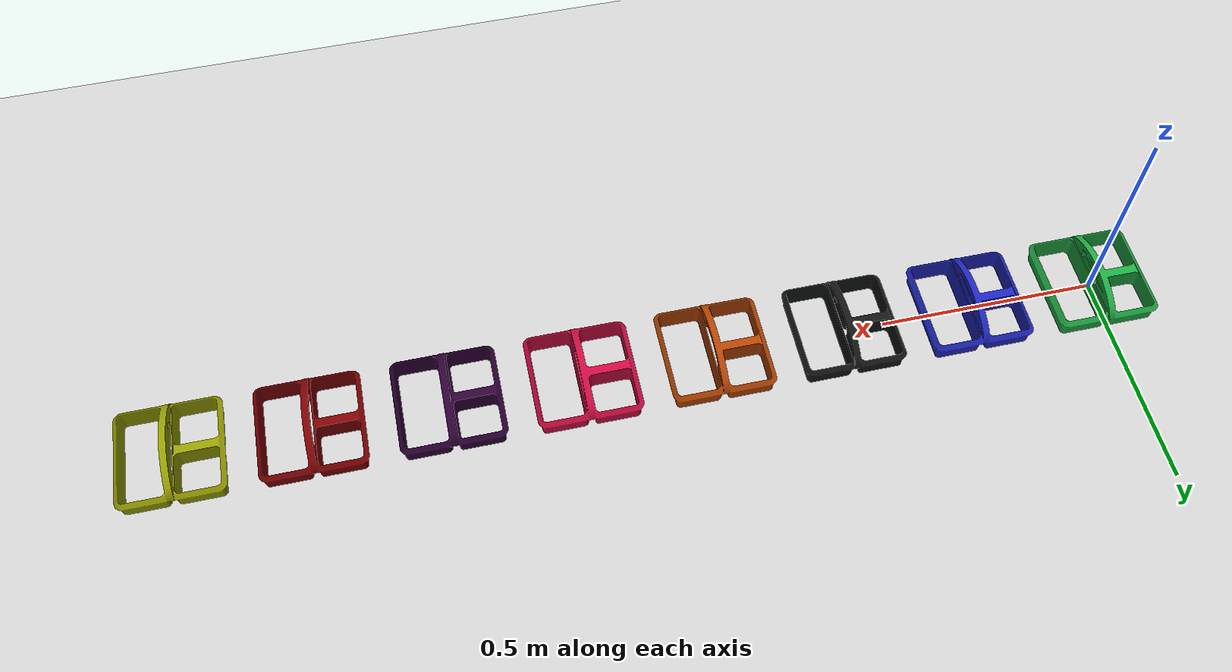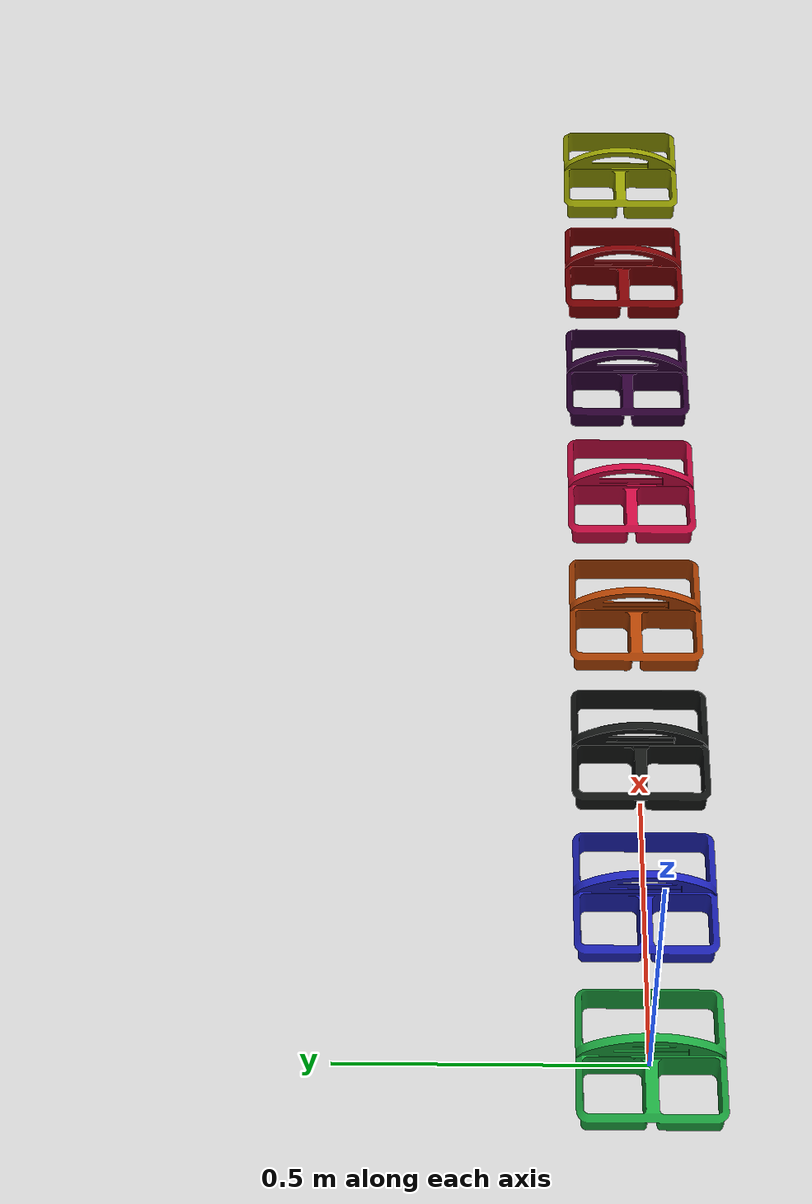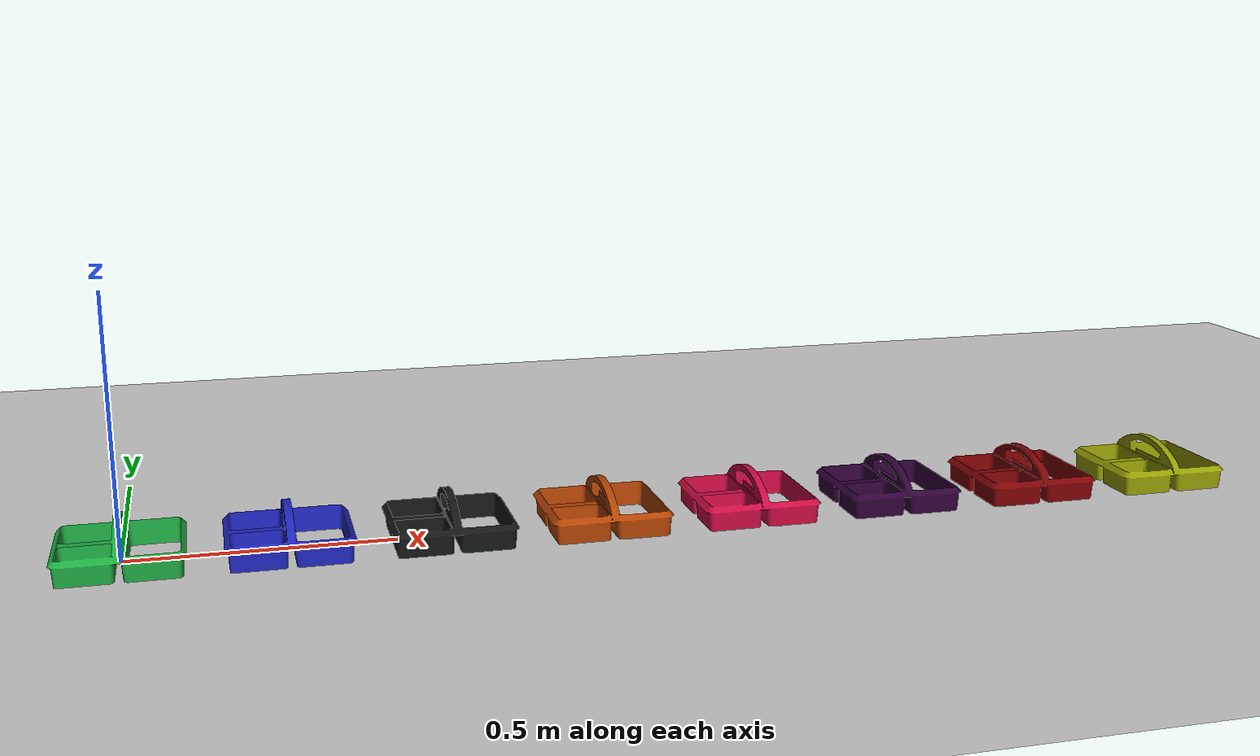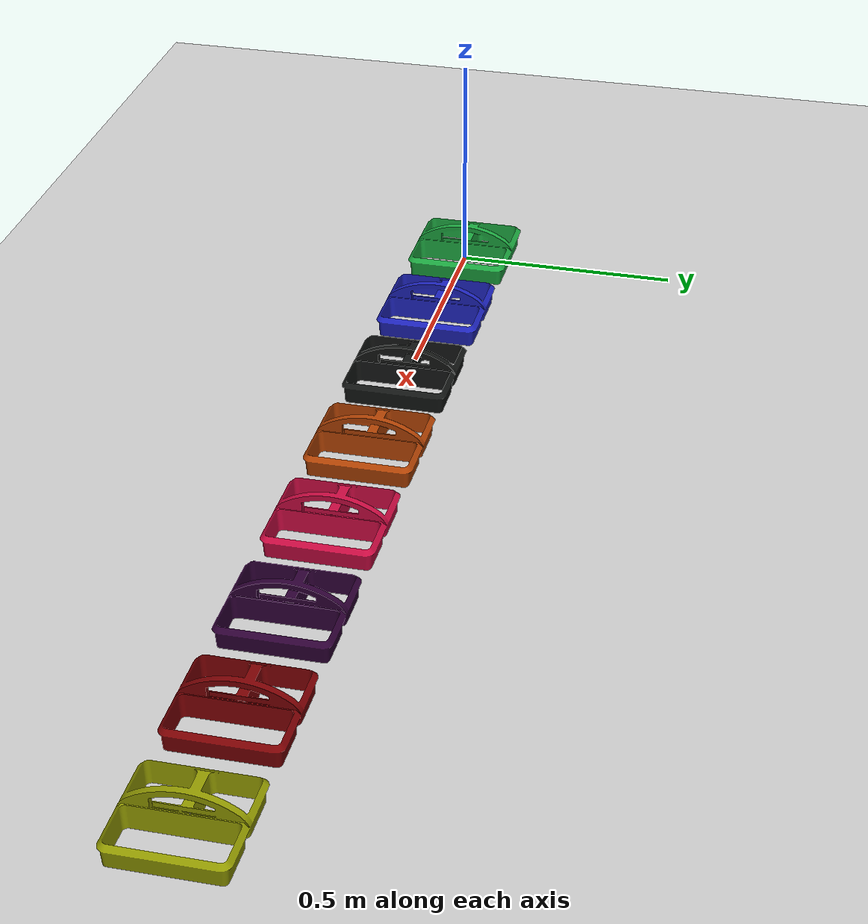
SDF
<?xml version="1.0" ?>
<sdf version="1.4">
  <world name="default">

    <include>
      <uri>model://ground_plane</uri>
    </include>

    <include>
      <uri>model://caddy_green</uri>
      <name>caddy_green1</name>
      <pose>0 0 0 0 0 0</pose>
    </include>

    <include>
      <uri>model://caddy_blue</uri>
      <name>caddy_blue1</name>
      <pose>0.3 0 0 0 0 0</pose>
    </include>

    <include>
      <uri>model://caddy_grey</uri>
      <name>caddy_grey1</name>
      <pose>0.6 0 0 0 0 0</pose>
    </include>

    <include>
      <uri>model://caddy_orange</uri>
      <name>caddy_orange1</name>
      <pose>0.9 0 0 0 0 0</pose>
    </include>

    <include>
      <uri>model://caddy_pink</uri>
      <name>caddy_pink1</name>
      <pose>1.2 0 0 0 0 0</pose>
    </include>

    <include>
      <uri>model://caddy_purple</uri>
      <name>caddy_purple1</name>
      <pose>1.5 0 0 0 0 0</pose>
    </include>

    <include>
      <uri>model://caddy_red</uri>
      <name>caddy_red1</name>
      <pose>1.8 0 0 0 0 0</pose>
    </include>

    <include>
      <uri>model://caddy_yellow</uri>
      <name>caddy_yellow1</name>
      <pose>2.1 0 0 0 0 0</pose>
    </include>

    <light name='user_point_light_0' type='point'>
      <pose frame=''>1.0 1.0 3.5 0 0 0</pose>
      <diffuse>0.7 0.7 0.7 1</diffuse>
      <specular>0.1 0.1 0.1 1</specular>
      <attenuation>
        <range>10</range>
        <constant>0.5</constant>
        <linear>0.01</linear>
        <quadratic>0.001</quadratic>
      </attenuation>
      <cast_shadows>0</cast_shadows>
      <direction>0 0 -1</direction>
    </light>

    <light name='user_point_light_1' type='point'>
      <pose frame=''>-1.0 1.0 3.5 0 0 0</pose>
      <diffuse>0.7 0.7 0.7 1</diffuse>
      <specular>0.1 0.1 0.1 1</specular>
      <attenuation>
        <range>10</range>
        <constant>0.5</constant>
        <linear>0.01</linear>
        <quadratic>0.001</quadratic>
      </attenuation>
      <cast_shadows>0</cast_shadows>
      <direction>0 0 -1</direction>
    </light>

    <light name='user_point_light_2' type='point'>
      <pose frame=''>-1.0 -1.0 3.5 0 0 0</pose>
      <diffuse>0.7 0.7 0.7 1</diffuse>
      <specular>0.1 0.1 0.1 1</specular>
      <attenuation>
        <range>10</range>
        <constant>0.5</constant>
        <linear>0.01</linear>
        <quadratic>0.001</quadratic>
      </attenuation>
      <cast_shadows>0</cast_shadows>
      <direction>0 0 -1</direction>
    </light>

    <light name='user_point_light_3' type='point'>
      <pose frame=''>1.0 -1.0 3.5 0 0 0</pose>
      <diffuse>0.7 0.7 0.7 1</diffuse>
      <specular>0.1 0.1 0.1 1</specular>
      <attenuation>
        <range>10</range>
        <constant>0.5</constant>
        <linear>0.01</linear>
        <quadratic>0.001</quadratic>
      </attenuation>
      <cast_shadows>0</cast_shadows>
      <direction>0 0 -1</direction>
    </light>

  </world>
</sdf>

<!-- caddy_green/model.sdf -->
<sdf version='1.4'>
  <model name="caddy_green">
      <static>0</static>
      <link name='link'>
        <inertial>
          <mass>0.0680389</mass>
          <inertia>
            <ixx>0.00040636575898</ixx>
            <ixy>0.000000</ixy>
            <ixz>0.000000</ixz>
            <iyy>0.00040636575898</iyy>
            <iyz>0.000000</iyz>
            <izz>0.000625974918075</izz>
          </inertia>
        </inertial>
        <collision name='collision'>
          <geometry>
            <mesh>
              <uri>model://caddy_green/meshes/Romanoff_Small_Utility_Caddy_cof.stl</uri>
              <scale>1 1 1</scale>
            </mesh>
          </geometry>
          <surface>
            <friction>
              <ode>
                <mu>1.0</mu>
                <mu2>1.0</mu2>
              </ode>
            </friction>
          </surface>
        </collision>

        <visual name='visual'>
          <geometry>
            <mesh>
              <uri>model://caddy_green/meshes/Romanoff_Small_Utility_Caddy_cof_green.dae</uri>
              <scale>1 1 1</scale>
            </mesh>
          </geometry>
        </visual>
        <velocity_decay>
          <linear>0.000000</linear>
          <angular>0.000000</angular>
        </velocity_decay>
        <self_collide>0</self_collide>
        <kinematic>0</kinematic>
        <gravity>1</gravity>
      </link>
  </model>
</sdf>

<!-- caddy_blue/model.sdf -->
<sdf version='1.4'>
  <model name="caddy_blue">
      <static>0</static>
      <link name='link'>
        <inertial>
          <mass>0.0680389</mass>
          <inertia>
            <ixx>0.00040636575898</ixx>
            <ixy>0.000000</ixy>
            <ixz>0.000000</ixz>
            <iyy>0.00040636575898</iyy>
            <iyz>0.000000</iyz>
            <izz>0.000625974918075</izz>
          </inertia>
        </inertial>
        <collision name='collision'>
          <geometry>
            <mesh>
              <uri>model://caddy_blue/meshes/Romanoff_Small_Utility_Caddy_cof.stl</uri>
              <scale>1 1 1</scale>
            </mesh>
          </geometry>
          <surface>
            <friction>
              <ode>
                <mu>1.0</mu>
                <mu2>1.0</mu2>
              </ode>
            </friction>
          </surface>
        </collision>

        <visual name='visual'>
          <geometry>
            <mesh>
              <uri>model://caddy_blue/meshes/Romanoff_Small_Utility_Caddy_cof_blue.dae</uri>
              <scale>1 1 1</scale>
            </mesh>
          </geometry>
        </visual>
        <velocity_decay>
          <linear>0.000000</linear>
          <angular>0.000000</angular>
        </velocity_decay>
        <self_collide>0</self_collide>
        <kinematic>0</kinematic>
        <gravity>1</gravity>
      </link>
  </model>
</sdf>

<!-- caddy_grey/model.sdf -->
<sdf version='1.4'>
  <model name="caddy_grey">
      <static>0</static>
      <link name='link'>
        <inertial>
          <mass>0.0680389</mass>
          <inertia>
            <ixx>0.00040636575898</ixx>
            <ixy>0.000000</ixy>
            <ixz>0.000000</ixz>
            <iyy>0.00040636575898</iyy>
            <iyz>0.000000</iyz>
            <izz>0.000625974918075</izz>
          </inertia>
        </inertial>
        <collision name='collision'>
          <geometry>
            <mesh>
              <uri>model://caddy_grey/meshes/Romanoff_Small_Utility_Caddy_cof.stl</uri>
              <scale>1 1 1</scale>
            </mesh>
          </geometry>
          <surface>
            <friction>
              <ode>
                <mu>1.0</mu>
                <mu2>1.0</mu2>
              </ode>
            </friction>
          </surface>
        </collision>

        <visual name='visual'>
          <geometry>
            <mesh>
              <uri>model://caddy_grey/meshes/Romanoff_Small_Utility_Caddy_cof_grey.dae</uri>
              <scale>1 1 1</scale>
            </mesh>
          </geometry>
        </visual>
        <velocity_decay>
          <linear>0.000000</linear>
          <angular>0.000000</angular>
        </velocity_decay>
        <self_collide>0</self_collide>
        <kinematic>0</kinematic>
        <gravity>1</gravity>
      </link>
  </model>
</sdf>

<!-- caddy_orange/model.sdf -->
<sdf version='1.4'>
  <model name="caddy_orange">
      <static>0</static>
      <link name='link'>
        <inertial>
          <mass>0.0680389</mass>
          <inertia>
            <ixx>0.00040636575898</ixx>
            <ixy>0.000000</ixy>
            <ixz>0.000000</ixz>
            <iyy>0.00040636575898</iyy>
            <iyz>0.000000</iyz>
            <izz>0.000625974918075</izz>
          </inertia>
        </inertial>
        <collision name='collision'>
          <geometry>
            <mesh>
              <uri>model://caddy_orange/meshes/Romanoff_Small_Utility_Caddy_cof.stl</uri>
              <scale>1 1 1</scale>
            </mesh>
          </geometry>
          <surface>
            <friction>
              <ode>
                <mu>1.0</mu>
                <mu2>1.0</mu2>
              </ode>
            </friction>
          </surface>
        </collision>

        <visual name='visual'>
          <geometry>
            <mesh>
              <uri>model://caddy_orange/meshes/Romanoff_Small_Utility_Caddy_cof_orange.dae</uri>
              <scale>1 1 1</scale>
            </mesh>
          </geometry>
        </visual>
        <velocity_decay>
          <linear>0.000000</linear>
          <angular>0.000000</angular>
        </velocity_decay>
        <self_collide>0</self_collide>
        <kinematic>0</kinematic>
        <gravity>1</gravity>
      </link>
  </model>
</sdf>

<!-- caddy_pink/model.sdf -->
<sdf version='1.4'>
  <model name="caddy_pink">
      <static>0</static>
      <link name='link'>
        <inertial>
          <mass>0.0680389</mass>
          <inertia>
            <ixx>0.00040636575898</ixx>
            <ixy>0.000000</ixy>
            <ixz>0.000000</ixz>
            <iyy>0.00040636575898</iyy>
            <iyz>0.000000</iyz>
            <izz>0.000625974918075</izz>
          </inertia>
        </inertial>
        <collision name='collision'>
          <geometry>
            <mesh>
              <uri>model://caddy_pink/meshes/Romanoff_Small_Utility_Caddy_cof.stl</uri>
              <scale>1 1 1</scale>
            </mesh>
          </geometry>
          <surface>
            <friction>
              <ode>
                <mu>1.0</mu>
                <mu2>1.0</mu2>
              </ode>
            </friction>
          </surface>
        </collision>

        <visual name='visual'>
          <geometry>
            <mesh>
              <uri>model://caddy_pink/meshes/Romanoff_Small_Utility_Caddy_cof_pink.dae</uri>
              <scale>1 1 1</scale>
            </mesh>
          </geometry>
        </visual>
        <velocity_decay>
          <linear>0.000000</linear>
          <angular>0.000000</angular>
        </velocity_decay>
        <self_collide>0</self_collide>
        <kinematic>0</kinematic>
        <gravity>1</gravity>
      </link>
  </model>
</sdf>

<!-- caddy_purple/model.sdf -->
<sdf version='1.4'>
  <model name="caddy_purple">
      <static>0</static>
      <link name='link'>
        <inertial>
          <mass>0.0680389</mass>
          <inertia>
            <ixx>0.00040636575898</ixx>
            <ixy>0.000000</ixy>
            <ixz>0.000000</ixz>
            <iyy>0.00040636575898</iyy>
            <iyz>0.000000</iyz>
            <izz>0.000625974918075</izz>
          </inertia>
        </inertial>
        <collision name='collision'>
          <geometry>
            <mesh>
              <uri>model://caddy_purple/meshes/Romanoff_Small_Utility_Caddy_cof.stl</uri>
              <scale>1 1 1</scale>
            </mesh>
          </geometry>
          <surface>
            <friction>
              <ode>
                <mu>1.0</mu>
                <mu2>1.0</mu2>
              </ode>
            </friction>
          </surface>
        </collision>

        <visual name='visual'>
          <geometry>
            <mesh>
              <uri>model://caddy_purple/meshes/Romanoff_Small_Utility_Caddy_cof_purple.dae</uri>
              <scale>1 1 1</scale>
            </mesh>
          </geometry>
        </visual>
        <velocity_decay>
          <linear>0.000000</linear>
          <angular>0.000000</angular>
        </velocity_decay>
        <self_collide>0</self_collide>
        <kinematic>0</kinematic>
        <gravity>1</gravity>
      </link>
  </model>
</sdf>

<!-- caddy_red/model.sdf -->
<sdf version='1.4'>
  <model name="caddy_red">
      <static>0</static>
      <link name='link'>
        <inertial>
          <mass>0.0680389</mass>
          <inertia>
            <ixx>0.00040636575898</ixx>
            <ixy>0.000000</ixy>
            <ixz>0.000000</ixz>
            <iyy>0.00040636575898</iyy>
            <iyz>0.000000</iyz>
            <izz>0.000625974918075</izz>
          </inertia>
        </inertial>
        <collision name='collision'>
          <geometry>
            <mesh>
              <uri>model://caddy_red/meshes/Romanoff_Small_Utility_Caddy_cof.stl</uri>
              <scale>1 1 1</scale>
            </mesh>
          </geometry>
          <surface>
            <friction>
              <ode>
                <mu>1.0</mu>
                <mu2>1.0</mu2>
              </ode>
            </friction>
          </surface>
        </collision>

        <visual name='visual'>
          <geometry>
            <mesh>
              <uri>model://caddy_red/meshes/Romanoff_Small_Utility_Caddy_cof_red.dae</uri>
              <scale>1 1 1</scale>
            </mesh>
          </geometry>
        </visual>
        <velocity_decay>
          <linear>0.000000</linear>
          <angular>0.000000</angular>
        </velocity_decay>
        <self_collide>0</self_collide>
        <kinematic>0</kinematic>
        <gravity>1</gravity>
      </link>
  </model>
</sdf>

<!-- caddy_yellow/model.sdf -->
<sdf version='1.4'>
  <model name="caddy_yellow">
      <static>0</static>
      <link name='link'>
        <inertial>
          <mass>0.0680389</mass>
          <inertia>
            <ixx>0.00040636575898</ixx>
            <ixy>0.000000</ixy>
            <ixz>0.000000</ixz>
            <iyy>0.00040636575898</iyy>
            <iyz>0.000000</iyz>
            <izz>0.000625974918075</izz>
          </inertia>
        </inertial>
        <collision name='collision'>
          <geometry>
            <mesh>
              <uri>model://caddy_yellow/meshes/Romanoff_Small_Utility_Caddy_cof.stl</uri>
              <scale>1 1 1</scale>
            </mesh>
          </geometry>
          <surface>
            <friction>
              <ode>
                <mu>1.0</mu>
                <mu2>1.0</mu2>
              </ode>
            </friction>
          </surface>
        </collision>

        <visual name='visual'>
          <geometry>
            <mesh>
              <uri>model://caddy_yellow/meshes/Romanoff_Small_Utility_Caddy_cof_yellow.dae</uri>
              <scale>1 1 1</scale>
            </mesh>
          </geometry>
        </visual>
        <velocity_decay>
          <linear>0.000000</linear>
          <angular>0.000000</angular>
        </velocity_decay>
        <self_collide>0</self_collide>
        <kinematic>0</kinematic>
        <gravity>1</gravity>
      </link>
  </model>
</sdf>
